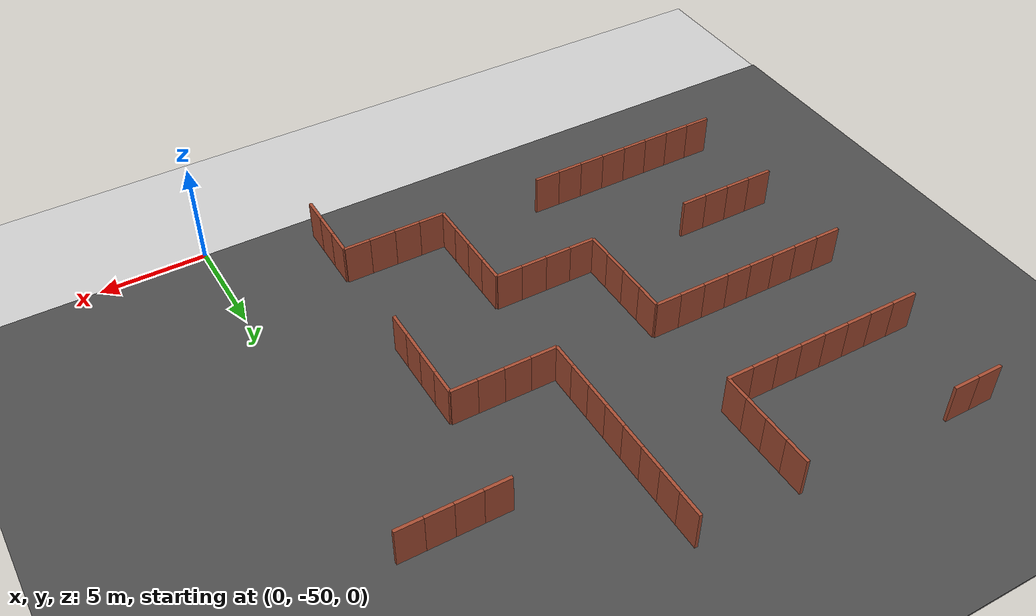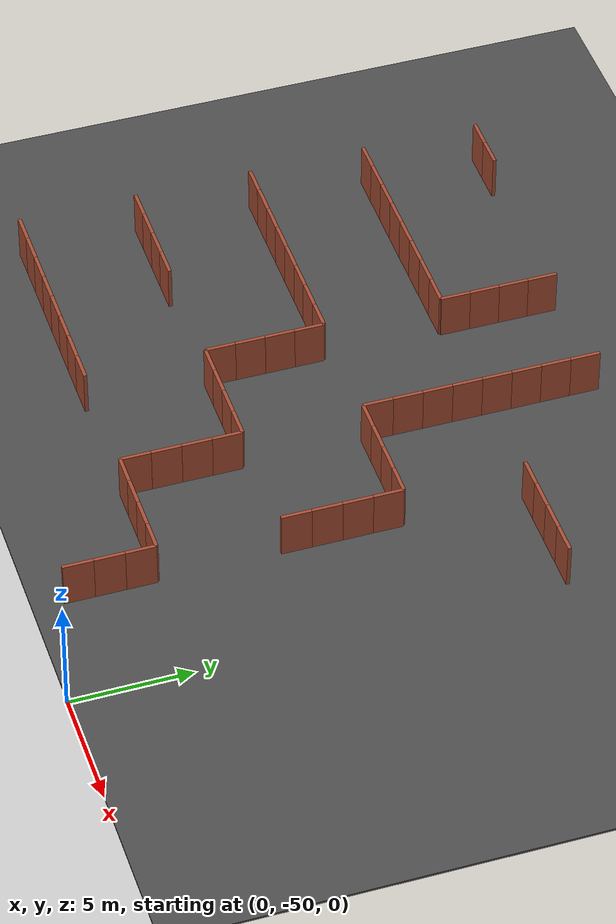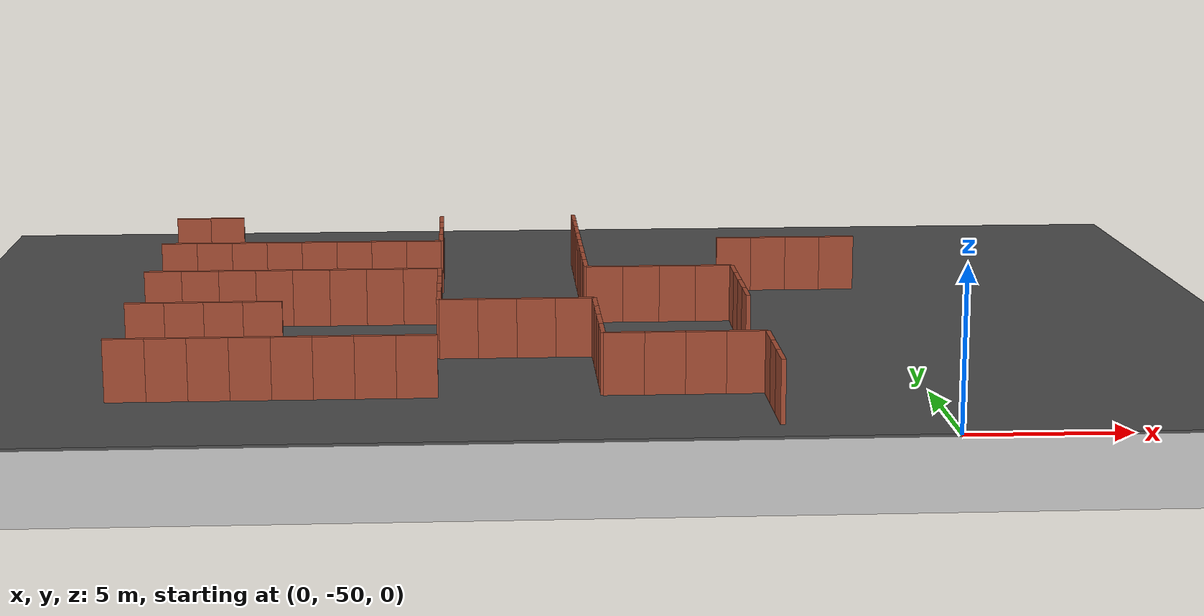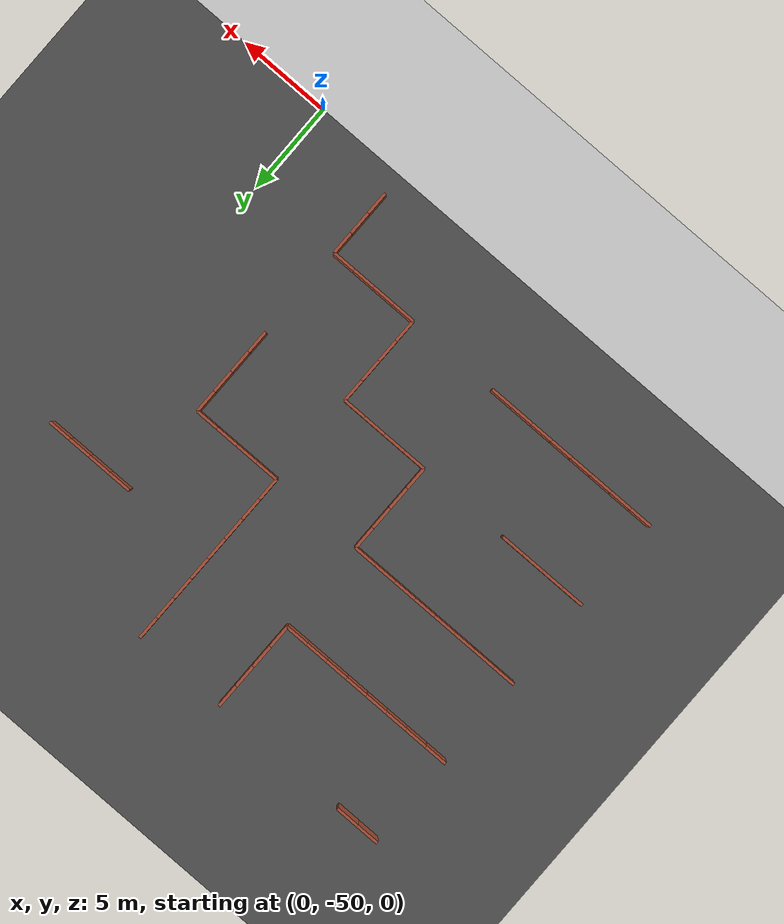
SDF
<sdf version="1.6">
 <world name="default">
  <model name="ground_plane">
   <static>1</static>
   <link name="link">
    <collision name="collision">
     <geometry><plane><normal>0 0 1</normal><size>100 100</size></plane></geometry>
     <surface><friction><ode><mu>100</mu><mu2>50</mu2></ode></friction></surface>
    </collision>
    <visual name="visual">
     <cast_shadows>0</cast_shadows>
     <geometry><plane><normal>0 0 1</normal><size>100 100</size></plane></geometry>
     <material>
      <script><uri>file://media/materials/scripts/gazebo.material</uri><name>Gazebo/Grey</name></script>
     </material>
    </visual>
   </link>
  </model>
  <model name="asphalt_plane">
   <static>1</static>
   <link name="link">
    <collision name="collision"><geometry><box><size>100 100 0.1</size></box></geometry></collision>
    <visual name="visual">
     <cast_shadows>0</cast_shadows>
     <geometry><box><size>100 100 0.1</size></box></geometry>
     <material>
      <script>
       <uri>model://asphalt_plane/materials/scripts</uri>
       <uri>model://asphalt_plane/materials/textures</uri>
       <name>vrc/asphalt</name>
      </script>
     </material>
    </visual>
   </link>
  </model>
  <model name="brick_wall_10_2_vertical1">
   <pose>-24.375 -45 0 0 -0 0</pose>
   <link name="Wall_0">
    <collision name="Wall_0_Collision">
     <geometry><box><size>1.25 0.15 2</size></box></geometry>
     <pose>0 0 1 0 -0 0</pose>
    </collision>
    <visual name="Wall_0_Visual">
     <pose>0 0 1 0 -0 0</pose>
     <geometry><box><size>1.25 0.15 2</size></box></geometry>
     <material>
      <script><uri>file://media/materials/scripts/gazebo.material</uri><name>Gazebo/Bricks</name></script>
      <ambient>1 1 1 1</ambient>
     </material>
     <meta><layer>0</layer></meta>
    </visual>
   </link>
   <static>1</static>
  </model>
  <model name="brick_wall_10_4_vertical1">
   <pose>-24.375 -40 0 0 -0 0</pose>
   <link name="Wall_0">
    <collision name="Wall_0_Collision">
     <geometry><box><size>1.25 0.15 2</size></box></geometry>
     <pose>0 0 1 0 -0 0</pose>
    </collision>
    <visual name="Wall_0_Visual">
     <pose>0 0 1 0 -0 0</pose>
     <geometry><box><size>1.25 0.15 2</size></box></geometry>
     <material>
      <script><uri>file://media/materials/scripts/gazebo.material</uri><name>Gazebo/Bricks</name></script>
      <ambient>1 1 1 1</ambient>
     </material>
     <meta><layer>0</layer></meta>
    </visual>
   </link>
   <static>1</static>
  </model>
  <model name="brick_wall_10_6_vertical1">
   <pose>-24.375 -35 0 0 -0 0</pose>
   <link name="Wall_0">
    <collision name="Wall_0_Collision">
     <geometry><box><size>1.25 0.15 2</size></box></geometry>
     <pose>0 0 1 0 -0 0</pose>
    </collision>
    <visual name="Wall_0_Visual">
     <pose>0 0 1 0 -0 0</pose>
     <geometry><box><size>1.25 0.15 2</size></box></geometry>
     <material>
      <script><uri>file://media/materials/scripts/gazebo.material</uri><name>Gazebo/Bricks</name></script>
      <ambient>1 1 1 1</ambient>
     </material>
     <meta><layer>0</layer></meta>
    </visual>
   </link>
   <static>1</static>
  </model>
  <model name="brick_wall_10_8_vertical1">
   <pose>-24.375 -30 0 0 -0 0</pose>
   <link name="Wall_0">
    <collision name="Wall_0_Collision">
     <geometry><box><size>1.25 0.15 2</size></box></geometry>
     <pose>0 0 1 0 -0 0</pose>
    </collision>
    <visual name="Wall_0_Visual">
     <pose>0 0 1 0 -0 0</pose>
     <geometry><box><size>1.25 0.15 2</size></box></geometry>
     <material>
      <script><uri>file://media/materials/scripts/gazebo.material</uri><name>Gazebo/Bricks</name></script>
      <ambient>1 1 1 1</ambient>
     </material>
     <meta><layer>0</layer></meta>
    </visual>
   </link>
   <static>1</static>
  </model>
  <model name="brick_wall_10_10_vertical1">
   <pose>-24.375 -25 0 0 -0 0</pose>
   <link name="Wall_0">
    <collision name="Wall_0_Collision">
     <geometry><box><size>1.25 0.15 2</size></box></geometry>
     <pose>0 0 1 0 -0 0</pose>
    </collision>
    <visual name="Wall_0_Visual">
     <pose>0 0 1 0 -0 0</pose>
     <geometry><box><size>1.25 0.15 2</size></box></geometry>
     <material>
      <script><uri>file://media/materials/scripts/gazebo.material</uri><name>Gazebo/Bricks</name></script>
      <ambient>1 1 1 1</ambient>
     </material>
     <meta><layer>0</layer></meta>
    </visual>
   </link>
   <static>1</static>
  </model>
  <model name="brick_wall_11_2_vertical1">
   <pose>-21.875 -45 0 0 -0 0</pose>
   <link name="Wall_0">
    <collision name="Wall_0_Collision">
     <geometry><box><size>1.25 0.15 2</size></box></geometry>
     <pose>0 0 1 0 -0 0</pose>
    </collision>
    <visual name="Wall_0_Visual">
     <pose>0 0 1 0 -0 0</pose>
     <geometry><box><size>1.25 0.15 2</size></box></geometry>
     <material>
      <script><uri>file://media/materials/scripts/gazebo.material</uri><name>Gazebo/Bricks</name></script>
      <ambient>1 1 1 1</ambient>
     </material>
     <meta><layer>0</layer></meta>
    </visual>
   </link>
   <static>1</static>
  </model>
  <model name="brick_wall_11_2_vertical2">
   <pose>-23.125 -45 0 0 -0 0</pose>
   <link name="Wall_0">
    <collision name="Wall_0_Collision">
     <geometry><box><size>1.25 0.15 2</size></box></geometry>
     <pose>0 0 1 0 -0 0</pose>
    </collision>
    <visual name="Wall_0_Visual">
     <pose>0 0 1 0 -0 0</pose>
     <geometry><box><size>1.25 0.15 2</size></box></geometry>
     <material>
      <script><uri>file://media/materials/scripts/gazebo.material</uri><name>Gazebo/Bricks</name></script>
      <ambient>1 1 1 1</ambient>
     </material>
     <meta><layer>0</layer></meta>
    </visual>
   </link>
   <static>1</static>
  </model>
  <model name="brick_wall_11_4_vertical1">
   <pose>-21.875 -40 0 0 -0 0</pose>
   <link name="Wall_0">
    <collision name="Wall_0_Collision">
     <geometry><box><size>1.25 0.15 2</size></box></geometry>
     <pose>0 0 1 0 -0 0</pose>
    </collision>
    <visual name="Wall_0_Visual">
     <pose>0 0 1 0 -0 0</pose>
     <geometry><box><size>1.25 0.15 2</size></box></geometry>
     <material>
      <script><uri>file://media/materials/scripts/gazebo.material</uri><name>Gazebo/Bricks</name></script>
      <ambient>1 1 1 1</ambient>
     </material>
     <meta><layer>0</layer></meta>
    </visual>
   </link>
   <static>1</static>
  </model>
  <model name="brick_wall_11_4_vertical2">
   <pose>-23.125 -40 0 0 -0 0</pose>
   <link name="Wall_0">
    <collision name="Wall_0_Collision">
     <geometry><box><size>1.25 0.15 2</size></box></geometry>
     <pose>0 0 1 0 -0 0</pose>
    </collision>
    <visual name="Wall_0_Visual">
     <pose>0 0 1 0 -0 0</pose>
     <geometry><box><size>1.25 0.15 2</size></box></geometry>
     <material>
      <script><uri>file://media/materials/scripts/gazebo.material</uri><name>Gazebo/Bricks</name></script>
      <ambient>1 1 1 1</ambient>
     </material>
     <meta><layer>0</layer></meta>
    </visual>
   </link>
   <static>1</static>
  </model>
  <model name="brick_wall_11_6_vertical1">
   <pose>-21.875 -35 0 0 -0 0</pose>
   <link name="Wall_0">
    <collision name="Wall_0_Collision">
     <geometry><box><size>1.25 0.15 2</size></box></geometry>
     <pose>0 0 1 0 -0 0</pose>
    </collision>
    <visual name="Wall_0_Visual">
     <pose>0 0 1 0 -0 0</pose>
     <geometry><box><size>1.25 0.15 2</size></box></geometry>
     <material>
      <script><uri>file://media/materials/scripts/gazebo.material</uri><name>Gazebo/Bricks</name></script>
      <ambient>1 1 1 1</ambient>
     </material>
     <meta><layer>0</layer></meta>
    </visual>
   </link>
   <static>1</static>
  </model>
  <model name="brick_wall_11_6_vertical2">
   <pose>-23.125 -35 0 0 -0 0</pose>
   <link name="Wall_0">
    <collision name="Wall_0_Collision">
     <geometry><box><size>1.25 0.15 2</size></box></geometry>
     <pose>0 0 1 0 -0 0</pose>
    </collision>
    <visual name="Wall_0_Visual">
     <pose>0 0 1 0 -0 0</pose>
     <geometry><box><size>1.25 0.15 2</size></box></geometry>
     <material>
      <script><uri>file://media/materials/scripts/gazebo.material</uri><name>Gazebo/Bricks</name></script>
      <ambient>1 1 1 1</ambient>
     </material>
     <meta><layer>0</layer></meta>
    </visual>
   </link>
   <static>1</static>
  </model>
  <model name="brick_wall_11_8_vertical1">
   <pose>-21.875 -30 0 0 -0 0</pose>
   <link name="Wall_0">
    <collision name="Wall_0_Collision">
     <geometry><box><size>1.25 0.15 2</size></box></geometry>
     <pose>0 0 1 0 -0 0</pose>
    </collision>
    <visual name="Wall_0_Visual">
     <pose>0 0 1 0 -0 0</pose>
     <geometry><box><size>1.25 0.15 2</size></box></geometry>
     <material>
      <script><uri>file://media/materials/scripts/gazebo.material</uri><name>Gazebo/Bricks</name></script>
      <ambient>1 1 1 1</ambient>
     </material>
     <meta><layer>0</layer></meta>
    </visual>
   </link>
   <static>1</static>
  </model>
  <model name="brick_wall_11_8_vertical2">
   <pose>-23.125 -30 0 0 -0 0</pose>
   <link name="Wall_0">
    <collision name="Wall_0_Collision">
     <geometry><box><size>1.25 0.15 2</size></box></geometry>
     <pose>0 0 1 0 -0 0</pose>
    </collision>
    <visual name="Wall_0_Visual">
     <pose>0 0 1 0 -0 0</pose>
     <geometry><box><size>1.25 0.15 2</size></box></geometry>
     <material>
      <script><uri>file://media/materials/scripts/gazebo.material</uri><name>Gazebo/Bricks</name></script>
      <ambient>1 1 1 1</ambient>
     </material>
     <meta><layer>0</layer></meta>
    </visual>
   </link>
   <static>1</static>
  </model>
  <model name="brick_wall_11_10_vertical2">
   <pose>-23.125 -25 0 0 -0 0</pose>
   <link name="Wall_0">
    <collision name="Wall_0_Collision">
     <geometry><box><size>1.25 0.15 2</size></box></geometry>
     <pose>0 0 1 0 -0 0</pose>
    </collision>
    <visual name="Wall_0_Visual">
     <pose>0 0 1 0 -0 0</pose>
     <geometry><box><size>1.25 0.15 2</size></box></geometry>
     <material>
      <script><uri>file://media/materials/scripts/gazebo.material</uri><name>Gazebo/Bricks</name></script>
      <ambient>1 1 1 1</ambient>
     </material>
     <meta><layer>0</layer></meta>
    </visual>
   </link>
   <static>1</static>
  </model>
  <model name="brick_wall_12_2_vertical1">
   <pose>-19.375 -45 0 0 -0 0</pose>
   <link name="Wall_0">
    <collision name="Wall_0_Collision">
     <geometry><box><size>1.25 0.15 2</size></box></geometry>
     <pose>0 0 1 0 -0 0</pose>
    </collision>
    <visual name="Wall_0_Visual">
     <pose>0 0 1 0 -0 0</pose>
     <geometry><box><size>1.25 0.15 2</size></box></geometry>
     <material>
      <script><uri>file://media/materials/scripts/gazebo.material</uri><name>Gazebo/Bricks</name></script>
      <ambient>1 1 1 1</ambient>
     </material>
     <meta><layer>0</layer></meta>
    </visual>
   </link>
   <static>1</static>
  </model>
  <model name="brick_wall_12_2_vertical2">
   <pose>-20.625 -45 0 0 -0 0</pose>
   <link name="Wall_0">
    <collision name="Wall_0_Collision">
     <geometry><box><size>1.25 0.15 2</size></box></geometry>
     <pose>0 0 1 0 -0 0</pose>
    </collision>
    <visual name="Wall_0_Visual">
     <pose>0 0 1 0 -0 0</pose>
     <geometry><box><size>1.25 0.15 2</size></box></geometry>
     <material>
      <script><uri>file://media/materials/scripts/gazebo.material</uri><name>Gazebo/Bricks</name></script>
      <ambient>1 1 1 1</ambient>
     </material>
     <meta><layer>0</layer></meta>
    </visual>
   </link>
   <static>1</static>
  </model>
  <model name="brick_wall_12_4_vertical2">
   <pose>-20.625 -40 0 0 -0 0</pose>
   <link name="Wall_0">
    <collision name="Wall_0_Collision">
     <geometry><box><size>1.25 0.15 2</size></box></geometry>
     <pose>0 0 1 0 -0 0</pose>
    </collision>
    <visual name="Wall_0_Visual">
     <pose>0 0 1 0 -0 0</pose>
     <geometry><box><size>1.25 0.15 2</size></box></geometry>
     <material>
      <script><uri>file://media/materials/scripts/gazebo.material</uri><name>Gazebo/Bricks</name></script>
      <ambient>1 1 1 1</ambient>
     </material>
     <meta><layer>0</layer></meta>
    </visual>
   </link>
   <static>1</static>
  </model>
  <model name="brick_wall_12_6_vertical1">
   <pose>-19.375 -35 0 0 -0 0</pose>
   <link name="Wall_0">
    <collision name="Wall_0_Collision">
     <geometry><box><size>1.25 0.15 2</size></box></geometry>
     <pose>0 0 1 0 -0 0</pose>
    </collision>
    <visual name="Wall_0_Visual">
     <pose>0 0 1 0 -0 0</pose>
     <geometry><box><size>1.25 0.15 2</size></box></geometry>
     <material>
      <script><uri>file://media/materials/scripts/gazebo.material</uri><name>Gazebo/Bricks</name></script>
      <ambient>1 1 1 1</ambient>
     </material>
     <meta><layer>0</layer></meta>
    </visual>
   </link>
   <static>1</static>
  </model>
  <model name="brick_wall_12_6_vertical2">
   <pose>-20.625 -35 0 0 -0 0</pose>
   <link name="Wall_0">
    <collision name="Wall_0_Collision">
     <geometry><box><size>1.25 0.15 2</size></box></geometry>
     <pose>0 0 1 0 -0 0</pose>
    </collision>
    <visual name="Wall_0_Visual">
     <pose>0 0 1 0 -0 0</pose>
     <geometry><box><size>1.25 0.15 2</size></box></geometry>
     <material>
      <script><uri>file://media/materials/scripts/gazebo.material</uri><name>Gazebo/Bricks</name></script>
      <ambient>1 1 1 1</ambient>
     </material>
     <meta><layer>0</layer></meta>
    </visual>
   </link>
   <static>1</static>
  </model>
  <model name="brick_wall_12_8_vertical1">
   <pose>-19.375 -30 0 0 -0 0</pose>
   <link name="Wall_0">
    <collision name="Wall_0_Collision">
     <geometry><box><size>1.25 0.15 2</size></box></geometry>
     <pose>0 0 1 0 -0 0</pose>
    </collision>
    <visual name="Wall_0_Visual">
     <pose>0 0 1 0 -0 0</pose>
     <geometry><box><size>1.25 0.15 2</size></box></geometry>
     <material>
      <script><uri>file://media/materials/scripts/gazebo.material</uri><name>Gazebo/Bricks</name></script>
      <ambient>1 1 1 1</ambient>
     </material>
     <meta><layer>0</layer></meta>
    </visual>
   </link>
   <static>1</static>
  </model>
  <model name="brick_wall_12_8_vertical2">
   <pose>-20.625 -30 0 0 -0 0</pose>
   <link name="Wall_0">
    <collision name="Wall_0_Collision">
     <geometry><box><size>1.25 0.15 2</size></box></geometry>
     <pose>0 0 1 0 -0 0</pose>
    </collision>
    <visual name="Wall_0_Visual">
     <pose>0 0 1 0 -0 0</pose>
     <geometry><box><size>1.25 0.15 2</size></box></geometry>
     <material>
      <script><uri>file://media/materials/scripts/gazebo.material</uri><name>Gazebo/Bricks</name></script>
      <ambient>1 1 1 1</ambient>
     </material>
     <meta><layer>0</layer></meta>
    </visual>
   </link>
   <static>1</static>
  </model>
  <model name="brick_wall_13_2_vertical1">
   <pose>-16.875 -45 0 0 -0 0</pose>
   <link name="Wall_0">
    <collision name="Wall_0_Collision">
     <geometry><box><size>1.25 0.15 2</size></box></geometry>
     <pose>0 0 1 0 -0 0</pose>
    </collision>
    <visual name="Wall_0_Visual">
     <pose>0 0 1 0 -0 0</pose>
     <geometry><box><size>1.25 0.15 2</size></box></geometry>
     <material>
      <script><uri>file://media/materials/scripts/gazebo.material</uri><name>Gazebo/Bricks</name></script>
      <ambient>1 1 1 1</ambient>
     </material>
     <meta><layer>0</layer></meta>
    </visual>
   </link>
   <static>1</static>
  </model>
  <model name="brick_wall_13_2_vertical2">
   <pose>-18.125 -45 0 0 -0 0</pose>
   <link name="Wall_0">
    <collision name="Wall_0_Collision">
     <geometry><box><size>1.25 0.15 2</size></box></geometry>
     <pose>0 0 1 0 -0 0</pose>
    </collision>
    <visual name="Wall_0_Visual">
     <pose>0 0 1 0 -0 0</pose>
     <geometry><box><size>1.25 0.15 2</size></box></geometry>
     <material>
      <script><uri>file://media/materials/scripts/gazebo.material</uri><name>Gazebo/Bricks</name></script>
      <ambient>1 1 1 1</ambient>
     </material>
     <meta><layer>0</layer></meta>
    </visual>
   </link>
   <static>1</static>
  </model>
  <model name="brick_wall_13_6_vertical1">
   <pose>-16.875 -35 0 0 -0 0</pose>
   <link name="Wall_0">
    <collision name="Wall_0_Collision">
     <geometry><box><size>1.25 0.15 2</size></box></geometry>
     <pose>0 0 1 0 -0 0</pose>
    </collision>
    <visual name="Wall_0_Visual">
     <pose>0 0 1 0 -0 0</pose>
     <geometry><box><size>1.25 0.15 2</size></box></geometry>
     <material>
      <script><uri>file://media/materials/scripts/gazebo.material</uri><name>Gazebo/Bricks</name></script>
      <ambient>1 1 1 1</ambient>
     </material>
     <meta><layer>0</layer></meta>
    </visual>
   </link>
   <static>1</static>
  </model>
  <model name="brick_wall_13_6_vertical2">
   <pose>-18.125 -35 0 0 -0 0</pose>
   <link name="Wall_0">
    <collision name="Wall_0_Collision">
     <geometry><box><size>1.25 0.15 2</size></box></geometry>
     <pose>0 0 1 0 -0 0</pose>
    </collision>
    <visual name="Wall_0_Visual">
     <pose>0 0 1 0 -0 0</pose>
     <geometry><box><size>1.25 0.15 2</size></box></geometry>
     <material>
      <script><uri>file://media/materials/scripts/gazebo.material</uri><name>Gazebo/Bricks</name></script>
      <ambient>1 1 1 1</ambient>
     </material>
     <meta><layer>0</layer></meta>
    </visual>
   </link>
   <static>1</static>
  </model>
  <model name="brick_wall_13_8_vertical1">
   <pose>-16.875 -30 0 0 -0 0</pose>
   <link name="Wall_0">
    <collision name="Wall_0_Collision">
     <geometry><box><size>1.25 0.15 2</size></box></geometry>
     <pose>0 0 1 0 -0 0</pose>
    </collision>
    <visual name="Wall_0_Visual">
     <pose>0 0 1 0 -0 0</pose>
     <geometry><box><size>1.25 0.15 2</size></box></geometry>
     <material>
      <script><uri>file://media/materials/scripts/gazebo.material</uri><name>Gazebo/Bricks</name></script>
      <ambient>1 1 1 1</ambient>
     </material>
     <meta><layer>0</layer></meta>
    </visual>
   </link>
   <static>1</static>
  </model>
  <model name="brick_wall_13_8_vertical2">
   <pose>-18.125 -30 0 0 -0 0</pose>
   <link name="Wall_0">
    <collision name="Wall_0_Collision">
     <geometry><box><size>1.25 0.15 2</size></box></geometry>
     <pose>0 0 1 0 -0 0</pose>
    </collision>
    <visual name="Wall_0_Visual">
     <pose>0 0 1 0 -0 0</pose>
     <geometry><box><size>1.25 0.15 2</size></box></geometry>
     <material>
      <script><uri>file://media/materials/scripts/gazebo.material</uri><name>Gazebo/Bricks</name></script>
      <ambient>1 1 1 1</ambient>
     </material>
     <meta><layer>0</layer></meta>
    </visual>
   </link>
   <static>1</static>
  </model>
  <model name="brick_wall_14_2_vertical2">
   <pose>-15.625 -45 0 0 -0 0</pose>
   <link name="Wall_0">
    <collision name="Wall_0_Collision">
     <geometry><box><size>1.25 0.15 2</size></box></geometry>
     <pose>0 0 1 0 -0 0</pose>
    </collision>
    <visual name="Wall_0_Visual">
     <pose>0 0 1 0 -0 0</pose>
     <geometry><box><size>1.25 0.15 2</size></box></geometry>
     <material>
      <script><uri>file://media/materials/scripts/gazebo.material</uri><name>Gazebo/Bricks</name></script>
      <ambient>1 1 1 1</ambient>
     </material>
     <meta><layer>0</layer></meta>
    </visual>
   </link>
   <static>1</static>
  </model>
  <model name="brick_wall_14_4_vertical1">
   <pose>-14.375 -40 0 0 -0 0</pose>
   <link name="Wall_0">
    <collision name="Wall_0_Collision">
     <geometry><box><size>1.25 0.15 2</size></box></geometry>
     <pose>0 0 1 0 -0 0</pose>
    </collision>
    <visual name="Wall_0_Visual">
     <pose>0 0 1 0 -0 0</pose>
     <geometry><box><size>1.25 0.15 2</size></box></geometry>
     <material>
      <script><uri>file://media/materials/scripts/gazebo.material</uri><name>Gazebo/Bricks</name></script>
      <ambient>1 1 1 1</ambient>
     </material>
     <meta><layer>0</layer></meta>
    </visual>
   </link>
   <static>1</static>
  </model>
  <model name="brick_wall_14_4_horizontal1">
   <pose>-15 -39.375 0 0 -0 1.5708</pose>
   <link name="Wall_0">
    <collision name="Wall_0_Collision">
     <geometry><box><size>1.25 0.15 2</size></box></geometry>
     <pose>0 0 1 0 -0 0</pose>
    </collision>
    <visual name="Wall_0_Visual">
     <pose>0 0 1 0 -0 0</pose>
     <geometry><box><size>1.25 0.15 2</size></box></geometry>
     <material>
      <script><uri>file://media/materials/scripts/gazebo.material</uri><name>Gazebo/Bricks</name></script>
      <ambient>1 1 1 1</ambient>
     </material>
     <meta><layer>0</layer></meta>
    </visual>
   </link>
   <static>1</static>
  </model>
  <model name="brick_wall_14_5_horizontal1">
   <pose>-15 -36.875 0 0 -0 1.5708</pose>
   <link name="Wall_0">
    <collision name="Wall_0_Collision">
     <geometry><box><size>1.25 0.15 2</size></box></geometry>
     <pose>0 0 1 0 -0 0</pose>
    </collision>
    <visual name="Wall_0_Visual">
     <pose>0 0 1 0 -0 0</pose>
     <geometry><box><size>1.25 0.15 2</size></box></geometry>
     <material>
      <script><uri>file://media/materials/scripts/gazebo.material</uri><name>Gazebo/Bricks</name></script>
      <ambient>1 1 1 1</ambient>
     </material>
     <meta><layer>0</layer></meta>
    </visual>
   </link>
   <static>1</static>
  </model>
  <model name="brick_wall_14_5_horizontal2">
   <pose>-15 -38.125 0 0 -0 1.5708</pose>
   <link name="Wall_0">
    <collision name="Wall_0_Collision">
     <geometry><box><size>1.25 0.15 2</size></box></geometry>
     <pose>0 0 1 0 -0 0</pose>
    </collision>
    <visual name="Wall_0_Visual">
     <pose>0 0 1 0 -0 0</pose>
     <geometry><box><size>1.25 0.15 2</size></box></geometry>
     <material>
      <script><uri>file://media/materials/scripts/gazebo.material</uri><name>Gazebo/Bricks</name></script>
      <ambient>1 1 1 1</ambient>
     </material>
     <meta><layer>0</layer></meta>
    </visual>
   </link>
   <static>1</static>
  </model>
  <model name="brick_wall_14_6_vertical2">
   <pose>-15.625 -35 0 0 -0 0</pose>
   <link name="Wall_0">
    <collision name="Wall_0_Collision">
     <geometry><box><size>1.25 0.15 2</size></box></geometry>
     <pose>0 0 1 0 -0 0</pose>
    </collision>
    <visual name="Wall_0_Visual">
     <pose>0 0 1 0 -0 0</pose>
     <geometry><box><size>1.25 0.15 2</size></box></geometry>
     <material>
      <script><uri>file://media/materials/scripts/gazebo.material</uri><name>Gazebo/Bricks</name></script>
      <ambient>1 1 1 1</ambient>
     </material>
     <meta><layer>0</layer></meta>
    </visual>
   </link>
   <static>1</static>
  </model>
  <model name="brick_wall_14_6_horizontal2">
   <pose>-15 -35.625 0 0 -0 1.5708</pose>
   <link name="Wall_0">
    <collision name="Wall_0_Collision">
     <geometry><box><size>1.25 0.15 2</size></box></geometry>
     <pose>0 0 1 0 -0 0</pose>
    </collision>
    <visual name="Wall_0_Visual">
     <pose>0 0 1 0 -0 0</pose>
     <geometry><box><size>1.25 0.15 2</size></box></geometry>
     <material>
      <script><uri>file://media/materials/scripts/gazebo.material</uri><name>Gazebo/Bricks</name></script>
      <ambient>1 1 1 1</ambient>
     </material>
     <meta><layer>0</layer></meta>
    </visual>
   </link>
   <static>1</static>
  </model>
  <model name="brick_wall_14_8_vertical2">
   <pose>-15.625 -30 0 0 -0 0</pose>
   <link name="Wall_0">
    <collision name="Wall_0_Collision">
     <geometry><box><size>1.25 0.15 2</size></box></geometry>
     <pose>0 0 1 0 -0 0</pose>
    </collision>
    <visual name="Wall_0_Visual">
     <pose>0 0 1 0 -0 0</pose>
     <geometry><box><size>1.25 0.15 2</size></box></geometry>
     <material>
      <script><uri>file://media/materials/scripts/gazebo.material</uri><name>Gazebo/Bricks</name></script>
      <ambient>1 1 1 1</ambient>
     </material>
     <meta><layer>0</layer></meta>
    </visual>
   </link>
   <static>1</static>
  </model>
  <model name="brick_wall_14_8_horizontal1">
   <pose>-15 -29.375 0 0 -0 1.5708</pose>
   <link name="Wall_0">
    <collision name="Wall_0_Collision">
     <geometry><box><size>1.25 0.15 2</size></box></geometry>
     <pose>0 0 1 0 -0 0</pose>
    </collision>
    <visual name="Wall_0_Visual">
     <pose>0 0 1 0 -0 0</pose>
     <geometry><box><size>1.25 0.15 2</size></box></geometry>
     <material>
      <script><uri>file://media/materials/scripts/gazebo.material</uri><name>Gazebo/Bricks</name></script>
      <ambient>1 1 1 1</ambient>
     </material>
     <meta><layer>0</layer></meta>
    </visual>
   </link>
   <static>1</static>
  </model>
  <model name="brick_wall_14_9_horizontal1">
   <pose>-15 -26.875 0 0 -0 1.5708</pose>
   <link name="Wall_0">
    <collision name="Wall_0_Collision">
     <geometry><box><size>1.25 0.15 2</size></box></geometry>
     <pose>0 0 1 0 -0 0</pose>
    </collision>
    <visual name="Wall_0_Visual">
     <pose>0 0 1 0 -0 0</pose>
     <geometry><box><size>1.25 0.15 2</size></box></geometry>
     <material>
      <script><uri>file://media/materials/scripts/gazebo.material</uri><name>Gazebo/Bricks</name></script>
      <ambient>1 1 1 1</ambient>
     </material>
     <meta><layer>0</layer></meta>
    </visual>
   </link>
   <static>1</static>
  </model>
  <model name="brick_wall_14_9_horizontal2">
   <pose>-15 -28.125 0 0 -0 1.5708</pose>
   <link name="Wall_0">
    <collision name="Wall_0_Collision">
     <geometry><box><size>1.25 0.15 2</size></box></geometry>
     <pose>0 0 1 0 -0 0</pose>
    </collision>
    <visual name="Wall_0_Visual">
     <pose>0 0 1 0 -0 0</pose>
     <geometry><box><size>1.25 0.15 2</size></box></geometry>
     <material>
      <script><uri>file://media/materials/scripts/gazebo.material</uri><name>Gazebo/Bricks</name></script>
      <ambient>1 1 1 1</ambient>
     </material>
     <meta><layer>0</layer></meta>
    </visual>
   </link>
   <static>1</static>
  </model>
  <model name="brick_wall_14_10_horizontal2">
   <pose>-15 -25.625 0 0 -0 1.5708</pose>
   <link name="Wall_0">
    <collision name="Wall_0_Collision">
     <geometry><box><size>1.25 0.15 2</size></box></geometry>
     <pose>0 0 1 0 -0 0</pose>
    </collision>
    <visual name="Wall_0_Visual">
     <pose>0 0 1 0 -0 0</pose>
     <geometry><box><size>1.25 0.15 2</size></box></geometry>
     <material>
      <script><uri>file://media/materials/scripts/gazebo.material</uri><name>Gazebo/Bricks</name></script>
      <ambient>1 1 1 1</ambient>
     </material>
     <meta><layer>0</layer></meta>
    </visual>
   </link>
   <static>1</static>
  </model>
  <model name="brick_wall_15_4_vertical1">
   <pose>-11.875 -40 0 0 -0 0</pose>
   <link name="Wall_0">
    <collision name="Wall_0_Collision">
     <geometry><box><size>1.25 0.15 2</size></box></geometry>
     <pose>0 0 1 0 -0 0</pose>
    </collision>
    <visual name="Wall_0_Visual">
     <pose>0 0 1 0 -0 0</pose>
     <geometry><box><size>1.25 0.15 2</size></box></geometry>
     <material>
      <script><uri>file://media/materials/scripts/gazebo.material</uri><name>Gazebo/Bricks</name></script>
      <ambient>1 1 1 1</ambient>
     </material>
     <meta><layer>0</layer></meta>
    </visual>
   </link>
   <static>1</static>
  </model>
  <model name="brick_wall_15_4_vertical2">
   <pose>-13.125 -40 0 0 -0 0</pose>
   <link name="Wall_0">
    <collision name="Wall_0_Collision">
     <geometry><box><size>1.25 0.15 2</size></box></geometry>
     <pose>0 0 1 0 -0 0</pose>
    </collision>
    <visual name="Wall_0_Visual">
     <pose>0 0 1 0 -0 0</pose>
     <geometry><box><size>1.25 0.15 2</size></box></geometry>
     <material>
      <script><uri>file://media/materials/scripts/gazebo.material</uri><name>Gazebo/Bricks</name></script>
      <ambient>1 1 1 1</ambient>
     </material>
     <meta><layer>0</layer></meta>
    </visual>
   </link>
   <static>1</static>
  </model>
  <model name="brick_wall_16_2_vertical1">
   <pose>-9.375 -45 0 0 -0 0</pose>
   <link name="Wall_0">
    <collision name="Wall_0_Collision">
     <geometry><box><size>1.25 0.15 2</size></box></geometry>
     <pose>0 0 1 0 -0 0</pose>
    </collision>
    <visual name="Wall_0_Visual">
     <pose>0 0 1 0 -0 0</pose>
     <geometry><box><size>1.25 0.15 2</size></box></geometry>
     <material>
      <script><uri>file://media/materials/scripts/gazebo.material</uri><name>Gazebo/Bricks</name></script>
      <ambient>1 1 1 1</ambient>
     </material>
     <meta><layer>0</layer></meta>
    </visual>
   </link>
   <static>1</static>
  </model>
  <model name="brick_wall_16_2_horizontal1">
   <pose>-10 -44.375 0 0 -0 1.5708</pose>
   <link name="Wall_0">
    <collision name="Wall_0_Collision">
     <geometry><box><size>1.25 0.15 2</size></box></geometry>
     <pose>0 0 1 0 -0 0</pose>
    </collision>
    <visual name="Wall_0_Visual">
     <pose>0 0 1 0 -0 0</pose>
     <geometry><box><size>1.25 0.15 2</size></box></geometry>
     <material>
      <script><uri>file://media/materials/scripts/gazebo.material</uri><name>Gazebo/Bricks</name></script>
      <ambient>1 1 1 1</ambient>
     </material>
     <meta><layer>0</layer></meta>
    </visual>
   </link>
   <static>1</static>
  </model>
  <model name="brick_wall_16_3_horizontal1">
   <pose>-10 -41.875 0 0 -0 1.5708</pose>
   <link name="Wall_0">
    <collision name="Wall_0_Collision">
     <geometry><box><size>1.25 0.15 2</size></box></geometry>
     <pose>0 0 1 0 -0 0</pose>
    </collision>
    <visual name="Wall_0_Visual">
     <pose>0 0 1 0 -0 0</pose>
     <geometry><box><size>1.25 0.15 2</size></box></geometry>
     <material>
      <script><uri>file://media/materials/scripts/gazebo.material</uri><name>Gazebo/Bricks</name></script>
      <ambient>1 1 1 1</ambient>
     </material>
     <meta><layer>0</layer></meta>
    </visual>
   </link>
   <static>1</static>
  </model>
  <model name="brick_wall_16_3_horizontal2">
   <pose>-10 -43.125 0 0 -0 1.5708</pose>
   <link name="Wall_0">
    <collision name="Wall_0_Collision">
     <geometry><box><size>1.25 0.15 2</size></box></geometry>
     <pose>0 0 1 0 -0 0</pose>
    </collision>
    <visual name="Wall_0_Visual">
     <pose>0 0 1 0 -0 0</pose>
     <geometry><box><size>1.25 0.15 2</size></box></geometry>
     <material>
      <script><uri>file://media/materials/scripts/gazebo.material</uri><name>Gazebo/Bricks</name></script>
      <ambient>1 1 1 1</ambient>
     </material>
     <meta><layer>0</layer></meta>
    </visual>
   </link>
   <static>1</static>
  </model>
  <model name="brick_wall_16_4_vertical2">
   <pose>-10.625 -40 0 0 -0 0</pose>
   <link name="Wall_0">
    <collision name="Wall_0_Collision">
     <geometry><box><size>1.25 0.15 2</size></box></geometry>
     <pose>0 0 1 0 -0 0</pose>
    </collision>
    <visual name="Wall_0_Visual">
     <pose>0 0 1 0 -0 0</pose>
     <geometry><box><size>1.25 0.15 2</size></box></geometry>
     <material>
      <script><uri>file://media/materials/scripts/gazebo.material</uri><name>Gazebo/Bricks</name></script>
      <ambient>1 1 1 1</ambient>
     </material>
     <meta><layer>0</layer></meta>
    </visual>
   </link>
   <static>1</static>
  </model>
  <model name="brick_wall_16_4_horizontal2">
   <pose>-10 -40.625 0 0 -0 1.5708</pose>
   <link name="Wall_0">
    <collision name="Wall_0_Collision">
     <geometry><box><size>1.25 0.15 2</size></box></geometry>
     <pose>0 0 1 0 -0 0</pose>
    </collision>
    <visual name="Wall_0_Visual">
     <pose>0 0 1 0 -0 0</pose>
     <geometry><box><size>1.25 0.15 2</size></box></geometry>
     <material>
      <script><uri>file://media/materials/scripts/gazebo.material</uri><name>Gazebo/Bricks</name></script>
      <ambient>1 1 1 1</ambient>
     </material>
     <meta><layer>0</layer></meta>
    </visual>
   </link>
   <static>1</static>
  </model>
  <model name="brick_wall_16_6_vertical1">
   <pose>-9.375 -35 0 0 -0 0</pose>
   <link name="Wall_0">
    <collision name="Wall_0_Collision">
     <geometry><box><size>1.25 0.15 2</size></box></geometry>
     <pose>0 0 1 0 -0 0</pose>
    </collision>
    <visual name="Wall_0_Visual">
     <pose>0 0 1 0 -0 0</pose>
     <geometry><box><size>1.25 0.15 2</size></box></geometry>
     <material>
      <script><uri>file://media/materials/scripts/gazebo.material</uri><name>Gazebo/Bricks</name></script>
      <ambient>1 1 1 1</ambient>
     </material>
     <meta><layer>0</layer></meta>
    </visual>
   </link>
   <static>1</static>
  </model>
  <model name="brick_wall_16_6_horizontal1">
   <pose>-10 -34.375 0 0 -0 1.5708</pose>
   <link name="Wall_0">
    <collision name="Wall_0_Collision">
     <geometry><box><size>1.25 0.15 2</size></box></geometry>
     <pose>0 0 1 0 -0 0</pose>
    </collision>
    <visual name="Wall_0_Visual">
     <pose>0 0 1 0 -0 0</pose>
     <geometry><box><size>1.25 0.15 2</size></box></geometry>
     <material>
      <script><uri>file://media/materials/scripts/gazebo.material</uri><name>Gazebo/Bricks</name></script>
      <ambient>1 1 1 1</ambient>
     </material>
     <meta><layer>0</layer></meta>
    </visual>
   </link>
   <static>1</static>
  </model>
  <model name="brick_wall_16_7_horizontal1">
   <pose>-10 -31.875 0 0 -0 1.5708</pose>
   <link name="Wall_0">
    <collision name="Wall_0_Collision">
     <geometry><box><size>1.25 0.15 2</size></box></geometry>
     <pose>0 0 1 0 -0 0</pose>
    </collision>
    <visual name="Wall_0_Visual">
     <pose>0 0 1 0 -0 0</pose>
     <geometry><box><size>1.25 0.15 2</size></box></geometry>
     <material>
      <script><uri>file://media/materials/scripts/gazebo.material</uri><name>Gazebo/Bricks</name></script>
      <ambient>1 1 1 1</ambient>
     </material>
     <meta><layer>0</layer></meta>
    </visual>
   </link>
   <static>1</static>
  </model>
  <model name="brick_wall_16_7_horizontal2">
   <pose>-10 -33.125 0 0 -0 1.5708</pose>
   <link name="Wall_0">
    <collision name="Wall_0_Collision">
     <geometry><box><size>1.25 0.15 2</size></box></geometry>
     <pose>0 0 1 0 -0 0</pose>
    </collision>
    <visual name="Wall_0_Visual">
     <pose>0 0 1 0 -0 0</pose>
     <geometry><box><size>1.25 0.15 2</size></box></geometry>
     <material>
      <script><uri>file://media/materials/scripts/gazebo.material</uri><name>Gazebo/Bricks</name></script>
      <ambient>1 1 1 1</ambient>
     </material>
     <meta><layer>0</layer></meta>
    </visual>
   </link>
   <static>1</static>
  </model>
  <model name="brick_wall_16_8_horizontal1">
   <pose>-10 -29.375 0 0 -0 1.5708</pose>
   <link name="Wall_0">
    <collision name="Wall_0_Collision">
     <geometry><box><size>1.25 0.15 2</size></box></geometry>
     <pose>0 0 1 0 -0 0</pose>
    </collision>
    <visual name="Wall_0_Visual">
     <pose>0 0 1 0 -0 0</pose>
     <geometry><box><size>1.25 0.15 2</size></box></geometry>
     <material>
      <script><uri>file://media/materials/scripts/gazebo.material</uri><name>Gazebo/Bricks</name></script>
      <ambient>1 1 1 1</ambient>
     </material>
     <meta><layer>0</layer></meta>
    </visual>
   </link>
   <static>1</static>
  </model>
  <model name="brick_wall_16_8_horizontal2">
   <pose>-10 -30.625 0 0 -0 1.5708</pose>
   <link name="Wall_0">
    <collision name="Wall_0_Collision">
     <geometry><box><size>1.25 0.15 2</size></box></geometry>
     <pose>0 0 1 0 -0 0</pose>
    </collision>
    <visual name="Wall_0_Visual">
     <pose>0 0 1 0 -0 0</pose>
     <geometry><box><size>1.25 0.15 2</size></box></geometry>
     <material>
      <script><uri>file://media/materials/scripts/gazebo.material</uri><name>Gazebo/Bricks</name></script>
      <ambient>1 1 1 1</ambient>
     </material>
     <meta><layer>0</layer></meta>
    </visual>
   </link>
   <static>1</static>
  </model>
  <model name="brick_wall_16_9_horizontal1">
   <pose>-10 -26.875 0 0 -0 1.5708</pose>
   <link name="Wall_0">
    <collision name="Wall_0_Collision">
     <geometry><box><size>1.25 0.15 2</size></box></geometry>
     <pose>0 0 1 0 -0 0</pose>
    </collision>
    <visual name="Wall_0_Visual">
     <pose>0 0 1 0 -0 0</pose>
     <geometry><box><size>1.25 0.15 2</size></box></geometry>
     <material>
      <script><uri>file://media/materials/scripts/gazebo.material</uri><name>Gazebo/Bricks</name></script>
      <ambient>1 1 1 1</ambient>
     </material>
     <meta><layer>0</layer></meta>
    </visual>
   </link>
   <static>1</static>
  </model>
  <model name="brick_wall_16_9_horizontal2">
   <pose>-10 -28.125 0 0 -0 1.5708</pose>
   <link name="Wall_0">
    <collision name="Wall_0_Collision">
     <geometry><box><size>1.25 0.15 2</size></box></geometry>
     <pose>0 0 1 0 -0 0</pose>
    </collision>
    <visual name="Wall_0_Visual">
     <pose>0 0 1 0 -0 0</pose>
     <geometry><box><size>1.25 0.15 2</size></box></geometry>
     <material>
      <script><uri>file://media/materials/scripts/gazebo.material</uri><name>Gazebo/Bricks</name></script>
      <ambient>1 1 1 1</ambient>
     </material>
     <meta><layer>0</layer></meta>
    </visual>
   </link>
   <static>1</static>
  </model>
  <model name="brick_wall_16_10_horizontal2">
   <pose>-10 -25.625 0 0 -0 1.5708</pose>
   <link name="Wall_0">
    <collision name="Wall_0_Collision">
     <geometry><box><size>1.25 0.15 2</size></box></geometry>
     <pose>0 0 1 0 -0 0</pose>
    </collision>
    <visual name="Wall_0_Visual">
     <pose>0 0 1 0 -0 0</pose>
     <geometry><box><size>1.25 0.15 2</size></box></geometry>
     <material>
      <script><uri>file://media/materials/scripts/gazebo.material</uri><name>Gazebo/Bricks</name></script>
      <ambient>1 1 1 1</ambient>
     </material>
     <meta><layer>0</layer></meta>
    </visual>
   </link>
   <static>1</static>
  </model>
  <model name="brick_wall_17_2_vertical1">
   <pose>-6.875 -45 0 0 -0 0</pose>
   <link name="Wall_0">
    <collision name="Wall_0_Collision">
     <geometry><box><size>1.25 0.15 2</size></box></geometry>
     <pose>0 0 1 0 -0 0</pose>
    </collision>
    <visual name="Wall_0_Visual">
     <pose>0 0 1 0 -0 0</pose>
     <geometry><box><size>1.25 0.15 2</size></box></geometry>
     <material>
      <script><uri>file://media/materials/scripts/gazebo.material</uri><name>Gazebo/Bricks</name></script>
      <ambient>1 1 1 1</ambient>
     </material>
     <meta><layer>0</layer></meta>
    </visual>
   </link>
   <static>1</static>
  </model>
  <model name="brick_wall_17_2_vertical2">
   <pose>-8.125 -45 0 0 -0 0</pose>
   <link name="Wall_0">
    <collision name="Wall_0_Collision">
     <geometry><box><size>1.25 0.15 2</size></box></geometry>
     <pose>0 0 1 0 -0 0</pose>
    </collision>
    <visual name="Wall_0_Visual">
     <pose>0 0 1 0 -0 0</pose>
     <geometry><box><size>1.25 0.15 2</size></box></geometry>
     <material>
      <script><uri>file://media/materials/scripts/gazebo.material</uri><name>Gazebo/Bricks</name></script>
      <ambient>1 1 1 1</ambient>
     </material>
     <meta><layer>0</layer></meta>
    </visual>
   </link>
   <static>1</static>
  </model>
  <model name="brick_wall_17_6_vertical1">
   <pose>-6.875 -35 0 0 -0 0</pose>
   <link name="Wall_0">
    <collision name="Wall_0_Collision">
     <geometry><box><size>1.25 0.15 2</size></box></geometry>
     <pose>0 0 1 0 -0 0</pose>
    </collision>
    <visual name="Wall_0_Visual">
     <pose>0 0 1 0 -0 0</pose>
     <geometry><box><size>1.25 0.15 2</size></box></geometry>
     <material>
      <script><uri>file://media/materials/scripts/gazebo.material</uri><name>Gazebo/Bricks</name></script>
      <ambient>1 1 1 1</ambient>
     </material>
     <meta><layer>0</layer></meta>
    </visual>
   </link>
   <static>1</static>
  </model>
  <model name="brick_wall_17_6_vertical2">
   <pose>-8.125 -35 0 0 -0 0</pose>
   <link name="Wall_0">
    <collision name="Wall_0_Collision">
     <geometry><box><size>1.25 0.15 2</size></box></geometry>
     <pose>0 0 1 0 -0 0</pose>
    </collision>
    <visual name="Wall_0_Visual">
     <pose>0 0 1 0 -0 0</pose>
     <geometry><box><size>1.25 0.15 2</size></box></geometry>
     <material>
      <script><uri>file://media/materials/scripts/gazebo.material</uri><name>Gazebo/Bricks</name></script>
      <ambient>1 1 1 1</ambient>
     </material>
     <meta><layer>0</layer></meta>
    </visual>
   </link>
   <static>1</static>
  </model>
  <model name="brick_wall_18_1_horizontal1">
   <pose>-5 -46.875 0 0 -0 1.5708</pose>
   <link name="Wall_0">
    <collision name="Wall_0_Collision">
     <geometry><box><size>1.25 0.15 2</size></box></geometry>
     <pose>0 0 1 0 -0 0</pose>
    </collision>
    <visual name="Wall_0_Visual">
     <pose>0 0 1 0 -0 0</pose>
     <geometry><box><size>1.25 0.15 2</size></box></geometry>
     <material>
      <script><uri>file://media/materials/scripts/gazebo.material</uri><name>Gazebo/Bricks</name></script>
      <ambient>1 1 1 1</ambient>
     </material>
     <meta><layer>0</layer></meta>
    </visual>
   </link>
   <static>1</static>
  </model>
  <model name="brick_wall_18_1_horizontal2">
   <pose>-5 -48.125 0 0 -0 1.5708</pose>
   <link name="Wall_0">
    <collision name="Wall_0_Collision">
     <geometry><box><size>1.25 0.15 2</size></box></geometry>
     <pose>0 0 1 0 -0 0</pose>
    </collision>
    <visual name="Wall_0_Visual">
     <pose>0 0 1 0 -0 0</pose>
     <geometry><box><size>1.25 0.15 2</size></box></geometry>
     <material>
      <script><uri>file://media/materials/scripts/gazebo.material</uri><name>Gazebo/Bricks</name></script>
      <ambient>1 1 1 1</ambient>
     </material>
     <meta><layer>0</layer></meta>
    </visual>
   </link>
   <static>1</static>
  </model>
  <model name="brick_wall_18_2_vertical2">
   <pose>-5.625 -45 0 0 -0 0</pose>
   <link name="Wall_0">
    <collision name="Wall_0_Collision">
     <geometry><box><size>1.25 0.15 2</size></box></geometry>
     <pose>0 0 1 0 -0 0</pose>
    </collision>
    <visual name="Wall_0_Visual">
     <pose>0 0 1 0 -0 0</pose>
     <geometry><box><size>1.25 0.15 2</size></box></geometry>
     <material>
      <script><uri>file://media/materials/scripts/gazebo.material</uri><name>Gazebo/Bricks</name></script>
      <ambient>1 1 1 1</ambient>
     </material>
     <meta><layer>0</layer></meta>
    </visual>
   </link>
   <static>1</static>
  </model>
  <model name="brick_wall_18_2_horizontal2">
   <pose>-5 -45.625 0 0 -0 1.5708</pose>
   <link name="Wall_0">
    <collision name="Wall_0_Collision">
     <geometry><box><size>1.25 0.15 2</size></box></geometry>
     <pose>0 0 1 0 -0 0</pose>
    </collision>
    <visual name="Wall_0_Visual">
     <pose>0 0 1 0 -0 0</pose>
     <geometry><box><size>1.25 0.15 2</size></box></geometry>
     <material>
      <script><uri>file://media/materials/scripts/gazebo.material</uri><name>Gazebo/Bricks</name></script>
      <ambient>1 1 1 1</ambient>
     </material>
     <meta><layer>0</layer></meta>
    </visual>
   </link>
   <static>1</static>
  </model>
  <model name="brick_wall_18_4_horizontal1">
   <pose>-5 -39.375 0 0 -0 1.5708</pose>
   <link name="Wall_0">
    <collision name="Wall_0_Collision">
     <geometry><box><size>1.25 0.15 2</size></box></geometry>
     <pose>0 0 1 0 -0 0</pose>
    </collision>
    <visual name="Wall_0_Visual">
     <pose>0 0 1 0 -0 0</pose>
     <geometry><box><size>1.25 0.15 2</size></box></geometry>
     <material>
      <script><uri>file://media/materials/scripts/gazebo.material</uri><name>Gazebo/Bricks</name></script>
      <ambient>1 1 1 1</ambient>
     </material>
     <meta><layer>0</layer></meta>
    </visual>
   </link>
   <static>1</static>
  </model>
  <model name="brick_wall_18_5_horizontal1">
   <pose>-5 -36.875 0 0 -0 1.5708</pose>
   <link name="Wall_0">
    <collision name="Wall_0_Collision">
     <geometry><box><size>1.25 0.15 2</size></box></geometry>
     <pose>0 0 1 0 -0 0</pose>
    </collision>
    <visual name="Wall_0_Visual">
     <pose>0 0 1 0 -0 0</pose>
     <geometry><box><size>1.25 0.15 2</size></box></geometry>
     <material>
      <script><uri>file://media/materials/scripts/gazebo.material</uri><name>Gazebo/Bricks</name></script>
      <ambient>1 1 1 1</ambient>
     </material>
     <meta><layer>0</layer></meta>
    </visual>
   </link>
   <static>1</static>
  </model>
  <model name="brick_wall_18_5_horizontal2">
   <pose>-5 -38.125 0 0 -0 1.5708</pose>
   <link name="Wall_0">
    <collision name="Wall_0_Collision">
     <geometry><box><size>1.25 0.15 2</size></box></geometry>
     <pose>0 0 1 0 -0 0</pose>
    </collision>
    <visual name="Wall_0_Visual">
     <pose>0 0 1 0 -0 0</pose>
     <geometry><box><size>1.25 0.15 2</size></box></geometry>
     <material>
      <script><uri>file://media/materials/scripts/gazebo.material</uri><name>Gazebo/Bricks</name></script>
      <ambient>1 1 1 1</ambient>
     </material>
     <meta><layer>0</layer></meta>
    </visual>
   </link>
   <static>1</static>
  </model>
  <model name="brick_wall_18_6_vertical2">
   <pose>-5.625 -35 0 0 -0 0</pose>
   <link name="Wall_0">
    <collision name="Wall_0_Collision">
     <geometry><box><size>1.25 0.15 2</size></box></geometry>
     <pose>0 0 1 0 -0 0</pose>
    </collision>
    <visual name="Wall_0_Visual">
     <pose>0 0 1 0 -0 0</pose>
     <geometry><box><size>1.25 0.15 2</size></box></geometry>
     <material>
      <script><uri>file://media/materials/scripts/gazebo.material</uri><name>Gazebo/Bricks</name></script>
      <ambient>1 1 1 1</ambient>
     </material>
     <meta><layer>0</layer></meta>
    </visual>
   </link>
   <static>1</static>
  </model>
  <model name="brick_wall_18_6_horizontal2">
   <pose>-5 -35.625 0 0 -0 1.5708</pose>
   <link name="Wall_0">
    <collision name="Wall_0_Collision">
     <geometry><box><size>1.25 0.15 2</size></box></geometry>
     <pose>0 0 1 0 -0 0</pose>
    </collision>
    <visual name="Wall_0_Visual">
     <pose>0 0 1 0 -0 0</pose>
     <geometry><box><size>1.25 0.15 2</size></box></geometry>
     <material>
      <script><uri>file://media/materials/scripts/gazebo.material</uri><name>Gazebo/Bricks</name></script>
      <ambient>1 1 1 1</ambient>
     </material>
     <meta><layer>0</layer></meta>
    </visual>
   </link>
   <static>1</static>
  </model>
  <model name="brick_wall_18_8_vertical1">
   <pose>-4.375 -30 0 0 -0 0</pose>
   <link name="Wall_0">
    <collision name="Wall_0_Collision">
     <geometry><box><size>1.25 0.15 2</size></box></geometry>
     <pose>0 0 1 0 -0 0</pose>
    </collision>
    <visual name="Wall_0_Visual">
     <pose>0 0 1 0 -0 0</pose>
     <geometry><box><size>1.25 0.15 2</size></box></geometry>
     <material>
      <script><uri>file://media/materials/scripts/gazebo.material</uri><name>Gazebo/Bricks</name></script>
      <ambient>1 1 1 1</ambient>
     </material>
     <meta><layer>0</layer></meta>
    </visual>
   </link>
   <static>1</static>
  </model>
  <model name="brick_wall_19_8_vertical1">
   <pose>-1.875 -30 0 0 -0 0</pose>
   <link name="Wall_0">
    <collision name="Wall_0_Collision">
     <geometry><box><size>1.25 0.15 2</size></box></geometry>
     <pose>0 0 1 0 -0 0</pose>
    </collision>
    <visual name="Wall_0_Visual">
     <pose>0 0 1 0 -0 0</pose>
     <geometry><box><size>1.25 0.15 2</size></box></geometry>
     <material>
      <script><uri>file://media/materials/scripts/gazebo.material</uri><name>Gazebo/Bricks</name></script>
      <ambient>1 1 1 1</ambient>
     </material>
     <meta><layer>0</layer></meta>
    </visual>
   </link>
   <static>1</static>
  </model>
  <model name="brick_wall_19_8_vertical2">
   <pose>-3.125 -30 0 0 -0 0</pose>
   <link name="Wall_0">
    <collision name="Wall_0_Collision">
     <geometry><box><size>1.25 0.15 2</size></box></geometry>
     <pose>0 0 1 0 -0 0</pose>
    </collision>
    <visual name="Wall_0_Visual">
     <pose>0 0 1 0 -0 0</pose>
     <geometry><box><size>1.25 0.15 2</size></box></geometry>
     <material>
      <script><uri>file://media/materials/scripts/gazebo.material</uri><name>Gazebo/Bricks</name></script>
      <ambient>1 1 1 1</ambient>
     </material>
     <meta><layer>0</layer></meta>
    </visual>
   </link>
   <static>1</static>
  </model>
  <model name="brick_wall_20_8_vertical2">
   <pose>-0.625 -30 0 0 -0 0</pose>
   <link name="Wall_0">
    <collision name="Wall_0_Collision">
     <geometry><box><size>1.25 0.15 2</size></box></geometry>
     <pose>0 0 1 0 -0 0</pose>
    </collision>
    <visual name="Wall_0_Visual">
     <pose>0 0 1 0 -0 0</pose>
     <geometry><box><size>1.25 0.15 2</size></box></geometry>
     <material>
      <script><uri>file://media/materials/scripts/gazebo.material</uri><name>Gazebo/Bricks</name></script>
      <ambient>1 1 1 1</ambient>
     </material>
     <meta><layer>0</layer></meta>
    </visual>
   </link>
   <static>1</static>
  </model>
 </world>
</sdf>
